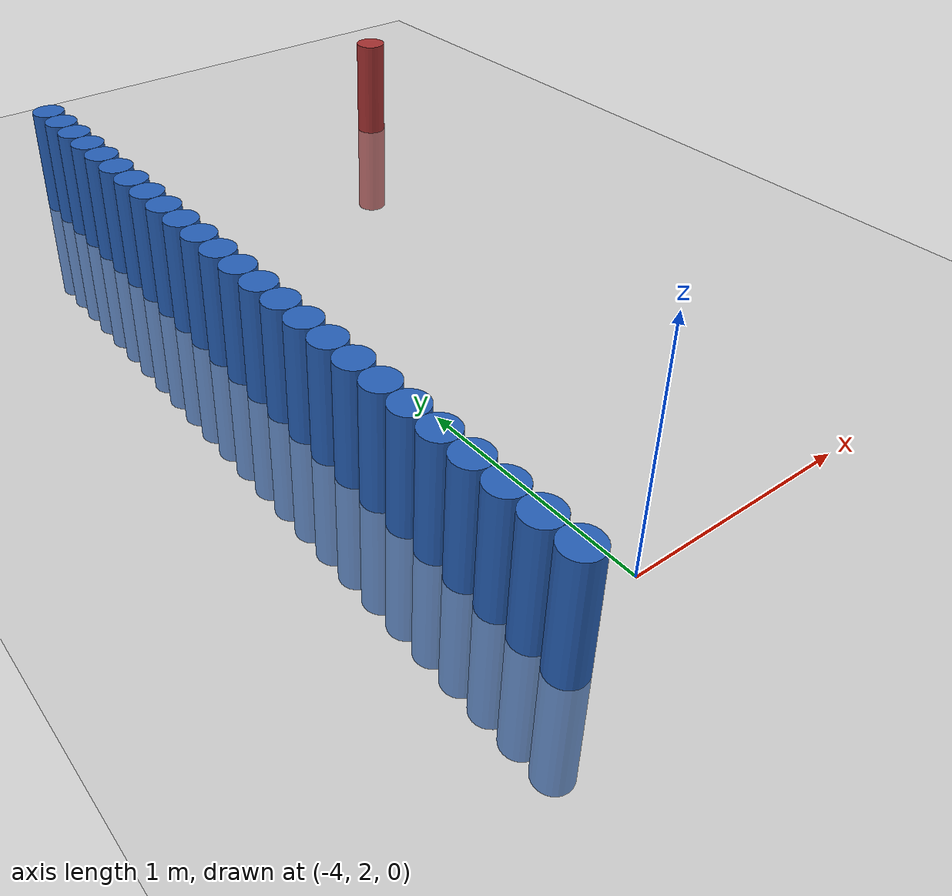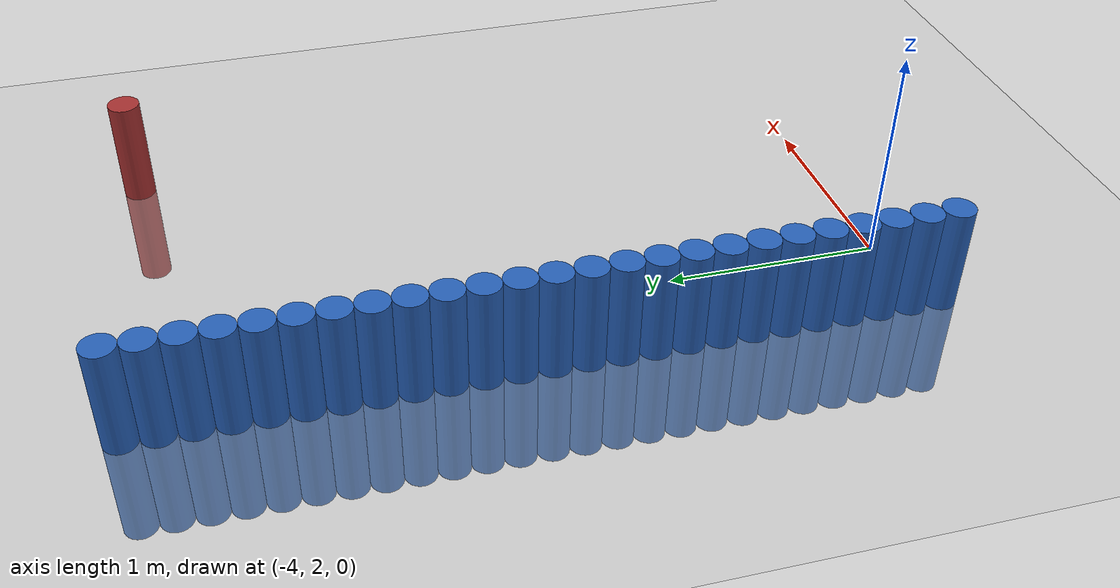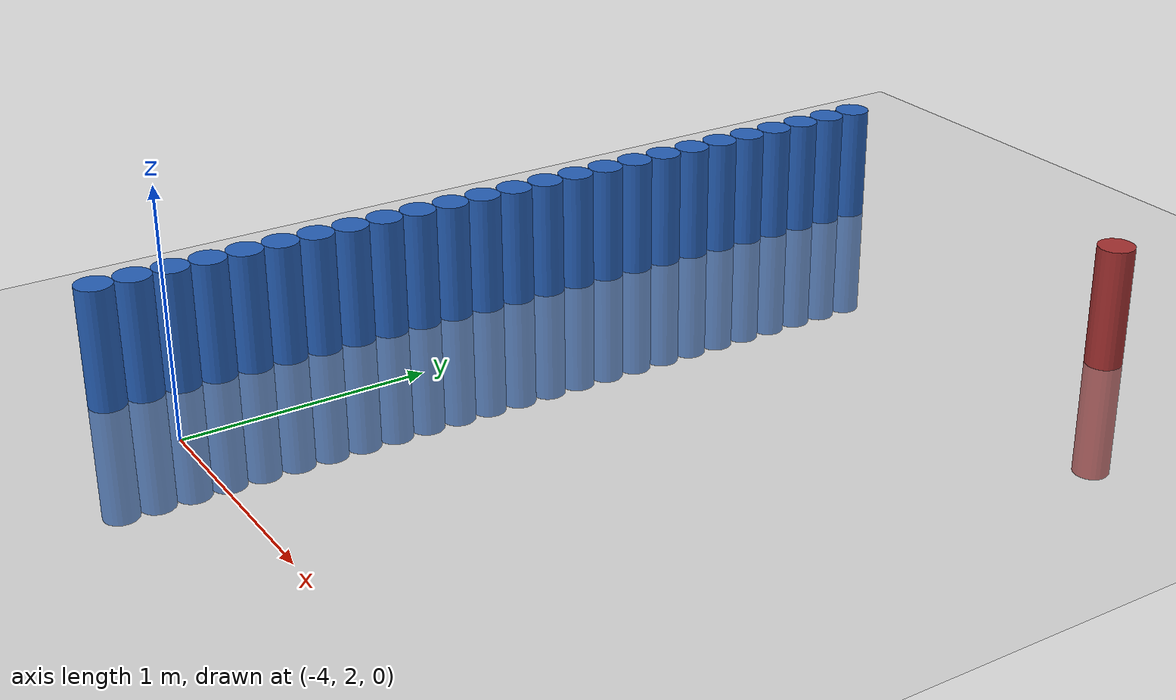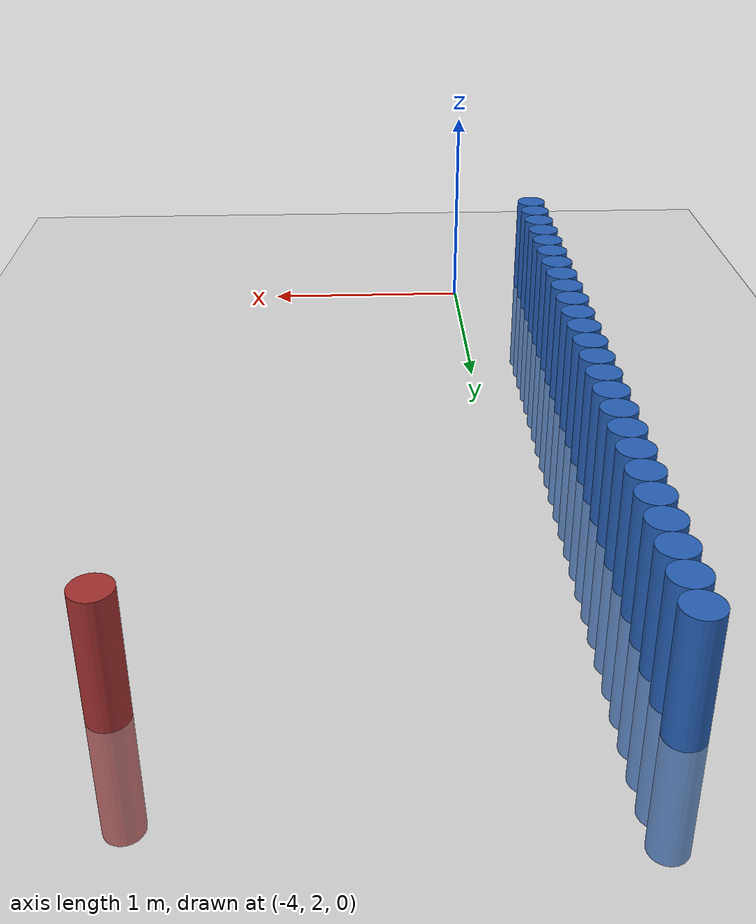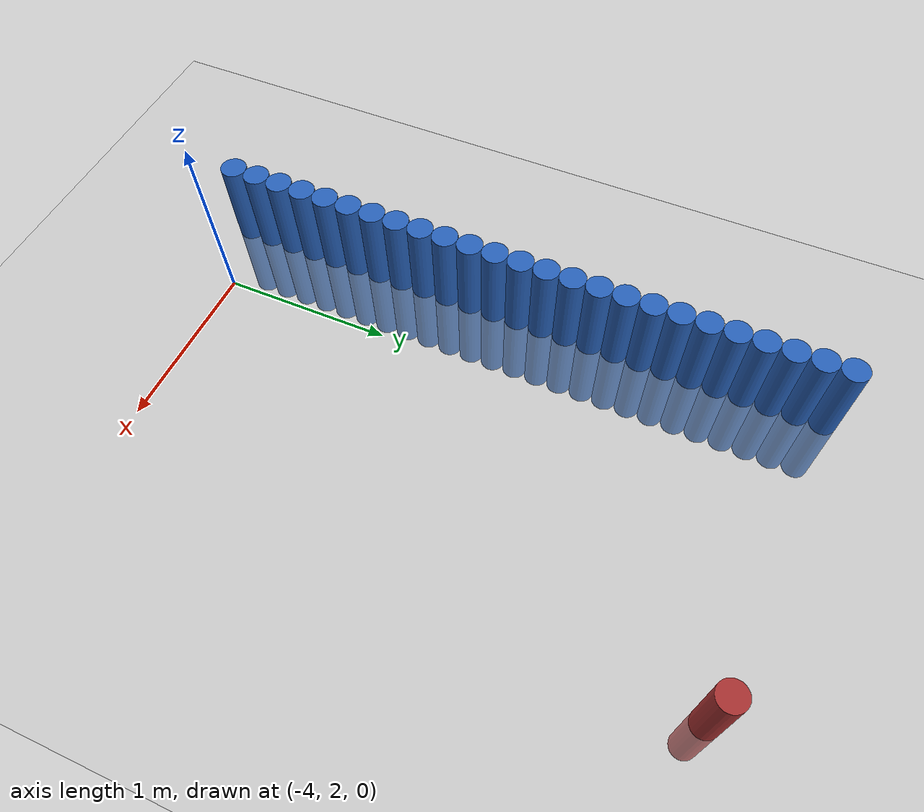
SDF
<sdf version="1.6">
 <world name="world_43">
  <model name="ground_plane">
   <static>1</static>
   <link name="link">
    <collision name="collision">
     <geometry><plane><normal>0 0 1</normal><size>100 100</size></plane></geometry>
     <surface><friction><ode><mu>100</mu><mu2>50</mu2></ode></friction></surface>
    </collision>
    <visual name="visual">
     <cast_shadows>0</cast_shadows>
     <geometry><plane><normal>0 0 1</normal><size>100 100</size></plane></geometry>
     <material>
      <script><uri>file://media/materials/scripts/gazebo.material</uri><name>Gazebo/Grey</name></script>
     </material>
    </visual>
   </link>
  </model>
  <model name="unit_cylinder_53">
   <static>1</static>
   <pose>-4.425000 1.875000 0.000000 0.000000 0.000000 0.000000</pose>
   <link name="link">
    <inertial>
     <mass>1</mass>
     <inertia><ixx>0.145833</ixx><ixy>0</ixy><ixz>0</ixz><iyy>0.145833</iyy><iyz>0</iyz><izz>0.125</izz></inertia>
    </inertial>
    <collision name="collision">
     <geometry><cylinder><radius>0.075000</radius><length>1</length></cylinder></geometry>
    </collision>
    <visual name="visual">
     <geometry><cylinder><radius>0.075000</radius><length>1</length></cylinder></geometry>
     <material>
      <ambient>0.152000 0.379000 0.720000 1</ambient>
      <diffuse>0.152000 0.379000 0.720000 1</diffuse>
     </material>
     <material>
      <script><name>Gazebo/Grey</name><uri>file://media/materials/scripts/gazebo.material</uri></script>
     </material>
    </visual>
   </link>
  </model>
  <model name="unit_cylinder_55">
   <static>1</static>
   <pose>-4.425000 2.025000 0.000000 0.000000 0.000000 0.000000</pose>
   <link name="link">
    <inertial>
     <mass>1</mass>
     <inertia><ixx>0.145833</ixx><ixy>0</ixy><ixz>0</ixz><iyy>0.145833</iyy><iyz>0</iyz><izz>0.125</izz></inertia>
    </inertial>
    <collision name="collision">
     <geometry><cylinder><radius>0.075000</radius><length>1</length></cylinder></geometry>
    </collision>
    <visual name="visual">
     <geometry><cylinder><radius>0.075000</radius><length>1</length></cylinder></geometry>
     <material>
      <ambient>0.152000 0.379000 0.720000 1</ambient>
      <diffuse>0.152000 0.379000 0.720000 1</diffuse>
     </material>
     <material>
      <script><name>Gazebo/Grey</name><uri>file://media/materials/scripts/gazebo.material</uri></script>
     </material>
    </visual>
   </link>
  </model>
  <model name="unit_cylinder_57">
   <static>1</static>
   <pose>-4.425000 2.175000 0.000000 0.000000 0.000000 0.000000</pose>
   <link name="link">
    <inertial>
     <mass>1</mass>
     <inertia><ixx>0.145833</ixx><ixy>0</ixy><ixz>0</ixz><iyy>0.145833</iyy><iyz>0</iyz><izz>0.125</izz></inertia>
    </inertial>
    <collision name="collision">
     <geometry><cylinder><radius>0.075000</radius><length>1</length></cylinder></geometry>
    </collision>
    <visual name="visual">
     <geometry><cylinder><radius>0.075000</radius><length>1</length></cylinder></geometry>
     <material>
      <ambient>0.152000 0.379000 0.720000 1</ambient>
      <diffuse>0.152000 0.379000 0.720000 1</diffuse>
     </material>
     <material>
      <script><name>Gazebo/Grey</name><uri>file://media/materials/scripts/gazebo.material</uri></script>
     </material>
    </visual>
   </link>
  </model>
  <model name="unit_cylinder_59">
   <static>1</static>
   <pose>-4.425000 2.325000 0.000000 0.000000 0.000000 0.000000</pose>
   <link name="link">
    <inertial>
     <mass>1</mass>
     <inertia><ixx>0.145833</ixx><ixy>0</ixy><ixz>0</ixz><iyy>0.145833</iyy><iyz>0</iyz><izz>0.125</izz></inertia>
    </inertial>
    <collision name="collision">
     <geometry><cylinder><radius>0.075000</radius><length>1</length></cylinder></geometry>
    </collision>
    <visual name="visual">
     <geometry><cylinder><radius>0.075000</radius><length>1</length></cylinder></geometry>
     <material>
      <ambient>0.152000 0.379000 0.720000 1</ambient>
      <diffuse>0.152000 0.379000 0.720000 1</diffuse>
     </material>
     <material>
      <script><name>Gazebo/Grey</name><uri>file://media/materials/scripts/gazebo.material</uri></script>
     </material>
    </visual>
   </link>
  </model>
  <model name="unit_cylinder_61">
   <static>1</static>
   <pose>-4.425000 2.475000 0.000000 0.000000 0.000000 0.000000</pose>
   <link name="link">
    <inertial>
     <mass>1</mass>
     <inertia><ixx>0.145833</ixx><ixy>0</ixy><ixz>0</ixz><iyy>0.145833</iyy><iyz>0</iyz><izz>0.125</izz></inertia>
    </inertial>
    <collision name="collision">
     <geometry><cylinder><radius>0.075000</radius><length>1</length></cylinder></geometry>
    </collision>
    <visual name="visual">
     <geometry><cylinder><radius>0.075000</radius><length>1</length></cylinder></geometry>
     <material>
      <ambient>0.152000 0.379000 0.720000 1</ambient>
      <diffuse>0.152000 0.379000 0.720000 1</diffuse>
     </material>
     <material>
      <script><name>Gazebo/Grey</name><uri>file://media/materials/scripts/gazebo.material</uri></script>
     </material>
    </visual>
   </link>
  </model>
  <model name="unit_cylinder_63">
   <static>1</static>
   <pose>-4.425000 2.625000 0.000000 0.000000 0.000000 0.000000</pose>
   <link name="link">
    <inertial>
     <mass>1</mass>
     <inertia><ixx>0.145833</ixx><ixy>0</ixy><ixz>0</ixz><iyy>0.145833</iyy><iyz>0</iyz><izz>0.125</izz></inertia>
    </inertial>
    <collision name="collision">
     <geometry><cylinder><radius>0.075000</radius><length>1</length></cylinder></geometry>
    </collision>
    <visual name="visual">
     <geometry><cylinder><radius>0.075000</radius><length>1</length></cylinder></geometry>
     <material>
      <ambient>0.152000 0.379000 0.720000 1</ambient>
      <diffuse>0.152000 0.379000 0.720000 1</diffuse>
     </material>
     <material>
      <script><name>Gazebo/Grey</name><uri>file://media/materials/scripts/gazebo.material</uri></script>
     </material>
    </visual>
   </link>
  </model>
  <model name="unit_cylinder_65">
   <static>1</static>
   <pose>-4.425000 2.775000 0.000000 0.000000 0.000000 0.000000</pose>
   <link name="link">
    <inertial>
     <mass>1</mass>
     <inertia><ixx>0.145833</ixx><ixy>0</ixy><ixz>0</ixz><iyy>0.145833</iyy><iyz>0</iyz><izz>0.125</izz></inertia>
    </inertial>
    <collision name="collision">
     <geometry><cylinder><radius>0.075000</radius><length>1</length></cylinder></geometry>
    </collision>
    <visual name="visual">
     <geometry><cylinder><radius>0.075000</radius><length>1</length></cylinder></geometry>
     <material>
      <ambient>0.152000 0.379000 0.720000 1</ambient>
      <diffuse>0.152000 0.379000 0.720000 1</diffuse>
     </material>
     <material>
      <script><name>Gazebo/Grey</name><uri>file://media/materials/scripts/gazebo.material</uri></script>
     </material>
    </visual>
   </link>
  </model>
  <model name="unit_cylinder_67">
   <static>1</static>
   <pose>-4.425000 2.925000 0.000000 0.000000 0.000000 0.000000</pose>
   <link name="link">
    <inertial>
     <mass>1</mass>
     <inertia><ixx>0.145833</ixx><ixy>0</ixy><ixz>0</ixz><iyy>0.145833</iyy><iyz>0</iyz><izz>0.125</izz></inertia>
    </inertial>
    <collision name="collision">
     <geometry><cylinder><radius>0.075000</radius><length>1</length></cylinder></geometry>
    </collision>
    <visual name="visual">
     <geometry><cylinder><radius>0.075000</radius><length>1</length></cylinder></geometry>
     <material>
      <ambient>0.152000 0.379000 0.720000 1</ambient>
      <diffuse>0.152000 0.379000 0.720000 1</diffuse>
     </material>
     <material>
      <script><name>Gazebo/Grey</name><uri>file://media/materials/scripts/gazebo.material</uri></script>
     </material>
    </visual>
   </link>
  </model>
  <model name="unit_cylinder_69">
   <static>1</static>
   <pose>-4.425000 3.075000 0.000000 0.000000 0.000000 0.000000</pose>
   <link name="link">
    <inertial>
     <mass>1</mass>
     <inertia><ixx>0.145833</ixx><ixy>0</ixy><ixz>0</ixz><iyy>0.145833</iyy><iyz>0</iyz><izz>0.125</izz></inertia>
    </inertial>
    <collision name="collision">
     <geometry><cylinder><radius>0.075000</radius><length>1</length></cylinder></geometry>
    </collision>
    <visual name="visual">
     <geometry><cylinder><radius>0.075000</radius><length>1</length></cylinder></geometry>
     <material>
      <ambient>0.152000 0.379000 0.720000 1</ambient>
      <diffuse>0.152000 0.379000 0.720000 1</diffuse>
     </material>
     <material>
      <script><name>Gazebo/Grey</name><uri>file://media/materials/scripts/gazebo.material</uri></script>
     </material>
    </visual>
   </link>
  </model>
  <model name="unit_cylinder_71">
   <static>1</static>
   <pose>-4.425000 3.225000 0.000000 0.000000 0.000000 0.000000</pose>
   <link name="link">
    <inertial>
     <mass>1</mass>
     <inertia><ixx>0.145833</ixx><ixy>0</ixy><ixz>0</ixz><iyy>0.145833</iyy><iyz>0</iyz><izz>0.125</izz></inertia>
    </inertial>
    <collision name="collision">
     <geometry><cylinder><radius>0.075000</radius><length>1</length></cylinder></geometry>
    </collision>
    <visual name="visual">
     <geometry><cylinder><radius>0.075000</radius><length>1</length></cylinder></geometry>
     <material>
      <ambient>0.152000 0.379000 0.720000 1</ambient>
      <diffuse>0.152000 0.379000 0.720000 1</diffuse>
     </material>
     <material>
      <script><name>Gazebo/Grey</name><uri>file://media/materials/scripts/gazebo.material</uri></script>
     </material>
    </visual>
   </link>
  </model>
  <model name="unit_cylinder_73">
   <static>1</static>
   <pose>-4.425000 3.375000 0.000000 0.000000 0.000000 0.000000</pose>
   <link name="link">
    <inertial>
     <mass>1</mass>
     <inertia><ixx>0.145833</ixx><ixy>0</ixy><ixz>0</ixz><iyy>0.145833</iyy><iyz>0</iyz><izz>0.125</izz></inertia>
    </inertial>
    <collision name="collision">
     <geometry><cylinder><radius>0.075000</radius><length>1</length></cylinder></geometry>
    </collision>
    <visual name="visual">
     <geometry><cylinder><radius>0.075000</radius><length>1</length></cylinder></geometry>
     <material>
      <ambient>0.152000 0.379000 0.720000 1</ambient>
      <diffuse>0.152000 0.379000 0.720000 1</diffuse>
     </material>
     <material>
      <script><name>Gazebo/Grey</name><uri>file://media/materials/scripts/gazebo.material</uri></script>
     </material>
    </visual>
   </link>
  </model>
  <model name="unit_cylinder_75">
   <static>1</static>
   <pose>-4.425000 3.525000 0.000000 0.000000 0.000000 0.000000</pose>
   <link name="link">
    <inertial>
     <mass>1</mass>
     <inertia><ixx>0.145833</ixx><ixy>0</ixy><ixz>0</ixz><iyy>0.145833</iyy><iyz>0</iyz><izz>0.125</izz></inertia>
    </inertial>
    <collision name="collision">
     <geometry><cylinder><radius>0.075000</radius><length>1</length></cylinder></geometry>
    </collision>
    <visual name="visual">
     <geometry><cylinder><radius>0.075000</radius><length>1</length></cylinder></geometry>
     <material>
      <ambient>0.152000 0.379000 0.720000 1</ambient>
      <diffuse>0.152000 0.379000 0.720000 1</diffuse>
     </material>
     <material>
      <script><name>Gazebo/Grey</name><uri>file://media/materials/scripts/gazebo.material</uri></script>
     </material>
    </visual>
   </link>
  </model>
  <model name="unit_cylinder_77">
   <static>1</static>
   <pose>-4.425000 3.675000 0.000000 0.000000 0.000000 0.000000</pose>
   <link name="link">
    <inertial>
     <mass>1</mass>
     <inertia><ixx>0.145833</ixx><ixy>0</ixy><ixz>0</ixz><iyy>0.145833</iyy><iyz>0</iyz><izz>0.125</izz></inertia>
    </inertial>
    <collision name="collision">
     <geometry><cylinder><radius>0.075000</radius><length>1</length></cylinder></geometry>
    </collision>
    <visual name="visual">
     <geometry><cylinder><radius>0.075000</radius><length>1</length></cylinder></geometry>
     <material>
      <ambient>0.152000 0.379000 0.720000 1</ambient>
      <diffuse>0.152000 0.379000 0.720000 1</diffuse>
     </material>
     <material>
      <script><name>Gazebo/Grey</name><uri>file://media/materials/scripts/gazebo.material</uri></script>
     </material>
    </visual>
   </link>
  </model>
  <model name="unit_cylinder_79">
   <static>1</static>
   <pose>-4.425000 3.825000 0.000000 0.000000 0.000000 0.000000</pose>
   <link name="link">
    <inertial>
     <mass>1</mass>
     <inertia><ixx>0.145833</ixx><ixy>0</ixy><ixz>0</ixz><iyy>0.145833</iyy><iyz>0</iyz><izz>0.125</izz></inertia>
    </inertial>
    <collision name="collision">
     <geometry><cylinder><radius>0.075000</radius><length>1</length></cylinder></geometry>
    </collision>
    <visual name="visual">
     <geometry><cylinder><radius>0.075000</radius><length>1</length></cylinder></geometry>
     <material>
      <ambient>0.152000 0.379000 0.720000 1</ambient>
      <diffuse>0.152000 0.379000 0.720000 1</diffuse>
     </material>
     <material>
      <script><name>Gazebo/Grey</name><uri>file://media/materials/scripts/gazebo.material</uri></script>
     </material>
    </visual>
   </link>
  </model>
  <model name="unit_cylinder_81">
   <static>1</static>
   <pose>-4.425000 3.975000 0.000000 0.000000 0.000000 0.000000</pose>
   <link name="link">
    <inertial>
     <mass>1</mass>
     <inertia><ixx>0.145833</ixx><ixy>0</ixy><ixz>0</ixz><iyy>0.145833</iyy><iyz>0</iyz><izz>0.125</izz></inertia>
    </inertial>
    <collision name="collision">
     <geometry><cylinder><radius>0.075000</radius><length>1</length></cylinder></geometry>
    </collision>
    <visual name="visual">
     <geometry><cylinder><radius>0.075000</radius><length>1</length></cylinder></geometry>
     <material>
      <ambient>0.152000 0.379000 0.720000 1</ambient>
      <diffuse>0.152000 0.379000 0.720000 1</diffuse>
     </material>
     <material>
      <script><name>Gazebo/Grey</name><uri>file://media/materials/scripts/gazebo.material</uri></script>
     </material>
    </visual>
   </link>
  </model>
  <model name="unit_cylinder_83">
   <static>1</static>
   <pose>-4.425000 4.125000 0.000000 0.000000 0.000000 0.000000</pose>
   <link name="link">
    <inertial>
     <mass>1</mass>
     <inertia><ixx>0.145833</ixx><ixy>0</ixy><ixz>0</ixz><iyy>0.145833</iyy><iyz>0</iyz><izz>0.125</izz></inertia>
    </inertial>
    <collision name="collision">
     <geometry><cylinder><radius>0.075000</radius><length>1</length></cylinder></geometry>
    </collision>
    <visual name="visual">
     <geometry><cylinder><radius>0.075000</radius><length>1</length></cylinder></geometry>
     <material>
      <ambient>0.152000 0.379000 0.720000 1</ambient>
      <diffuse>0.152000 0.379000 0.720000 1</diffuse>
     </material>
     <material>
      <script><name>Gazebo/Grey</name><uri>file://media/materials/scripts/gazebo.material</uri></script>
     </material>
    </visual>
   </link>
  </model>
  <model name="unit_cylinder_85">
   <static>1</static>
   <pose>-4.425000 4.275000 0.000000 0.000000 0.000000 0.000000</pose>
   <link name="link">
    <inertial>
     <mass>1</mass>
     <inertia><ixx>0.145833</ixx><ixy>0</ixy><ixz>0</ixz><iyy>0.145833</iyy><iyz>0</iyz><izz>0.125</izz></inertia>
    </inertial>
    <collision name="collision">
     <geometry><cylinder><radius>0.075000</radius><length>1</length></cylinder></geometry>
    </collision>
    <visual name="visual">
     <geometry><cylinder><radius>0.075000</radius><length>1</length></cylinder></geometry>
     <material>
      <ambient>0.152000 0.379000 0.720000 1</ambient>
      <diffuse>0.152000 0.379000 0.720000 1</diffuse>
     </material>
     <material>
      <script><name>Gazebo/Grey</name><uri>file://media/materials/scripts/gazebo.material</uri></script>
     </material>
    </visual>
   </link>
  </model>
  <model name="unit_cylinder_87">
   <static>1</static>
   <pose>-4.425000 4.425000 0.000000 0.000000 0.000000 0.000000</pose>
   <link name="link">
    <inertial>
     <mass>1</mass>
     <inertia><ixx>0.145833</ixx><ixy>0</ixy><ixz>0</ixz><iyy>0.145833</iyy><iyz>0</iyz><izz>0.125</izz></inertia>
    </inertial>
    <collision name="collision">
     <geometry><cylinder><radius>0.075000</radius><length>1</length></cylinder></geometry>
    </collision>
    <visual name="visual">
     <geometry><cylinder><radius>0.075000</radius><length>1</length></cylinder></geometry>
     <material>
      <ambient>0.152000 0.379000 0.720000 1</ambient>
      <diffuse>0.152000 0.379000 0.720000 1</diffuse>
     </material>
     <material>
      <script><name>Gazebo/Grey</name><uri>file://media/materials/scripts/gazebo.material</uri></script>
     </material>
    </visual>
   </link>
  </model>
  <model name="unit_cylinder_89">
   <static>1</static>
   <pose>-4.425000 4.575000 0.000000 0.000000 0.000000 0.000000</pose>
   <link name="link">
    <inertial>
     <mass>1</mass>
     <inertia><ixx>0.145833</ixx><ixy>0</ixy><ixz>0</ixz><iyy>0.145833</iyy><iyz>0</iyz><izz>0.125</izz></inertia>
    </inertial>
    <collision name="collision">
     <geometry><cylinder><radius>0.075000</radius><length>1</length></cylinder></geometry>
    </collision>
    <visual name="visual">
     <geometry><cylinder><radius>0.075000</radius><length>1</length></cylinder></geometry>
     <material>
      <ambient>0.152000 0.379000 0.720000 1</ambient>
      <diffuse>0.152000 0.379000 0.720000 1</diffuse>
     </material>
     <material>
      <script><name>Gazebo/Grey</name><uri>file://media/materials/scripts/gazebo.material</uri></script>
     </material>
    </visual>
   </link>
  </model>
  <model name="unit_cylinder_91">
   <static>1</static>
   <pose>-4.425000 4.725000 0.000000 0.000000 0.000000 0.000000</pose>
   <link name="link">
    <inertial>
     <mass>1</mass>
     <inertia><ixx>0.145833</ixx><ixy>0</ixy><ixz>0</ixz><iyy>0.145833</iyy><iyz>0</iyz><izz>0.125</izz></inertia>
    </inertial>
    <collision name="collision">
     <geometry><cylinder><radius>0.075000</radius><length>1</length></cylinder></geometry>
    </collision>
    <visual name="visual">
     <geometry><cylinder><radius>0.075000</radius><length>1</length></cylinder></geometry>
     <material>
      <ambient>0.152000 0.379000 0.720000 1</ambient>
      <diffuse>0.152000 0.379000 0.720000 1</diffuse>
     </material>
     <material>
      <script><name>Gazebo/Grey</name><uri>file://media/materials/scripts/gazebo.material</uri></script>
     </material>
    </visual>
   </link>
  </model>
  <model name="unit_cylinder_93">
   <static>1</static>
   <pose>-4.425000 4.875000 0.000000 0.000000 0.000000 0.000000</pose>
   <link name="link">
    <inertial>
     <mass>1</mass>
     <inertia><ixx>0.145833</ixx><ixy>0</ixy><ixz>0</ixz><iyy>0.145833</iyy><iyz>0</iyz><izz>0.125</izz></inertia>
    </inertial>
    <collision name="collision">
     <geometry><cylinder><radius>0.075000</radius><length>1</length></cylinder></geometry>
    </collision>
    <visual name="visual">
     <geometry><cylinder><radius>0.075000</radius><length>1</length></cylinder></geometry>
     <material>
      <ambient>0.152000 0.379000 0.720000 1</ambient>
      <diffuse>0.152000 0.379000 0.720000 1</diffuse>
     </material>
     <material>
      <script><name>Gazebo/Grey</name><uri>file://media/materials/scripts/gazebo.material</uri></script>
     </material>
    </visual>
   </link>
  </model>
  <model name="unit_cylinder_95">
   <static>1</static>
   <pose>-4.425000 5.025000 0.000000 0.000000 0.000000 0.000000</pose>
   <link name="link">
    <inertial>
     <mass>1</mass>
     <inertia><ixx>0.145833</ixx><ixy>0</ixy><ixz>0</ixz><iyy>0.145833</iyy><iyz>0</iyz><izz>0.125</izz></inertia>
    </inertial>
    <collision name="collision">
     <geometry><cylinder><radius>0.075000</radius><length>1</length></cylinder></geometry>
    </collision>
    <visual name="visual">
     <geometry><cylinder><radius>0.075000</radius><length>1</length></cylinder></geometry>
     <material>
      <ambient>0.152000 0.379000 0.720000 1</ambient>
      <diffuse>0.152000 0.379000 0.720000 1</diffuse>
     </material>
     <material>
      <script><name>Gazebo/Grey</name><uri>file://media/materials/scripts/gazebo.material</uri></script>
     </material>
    </visual>
   </link>
  </model>
  <model name="unit_cylinder_96">
   <static>1</static>
   <pose>-4.425000 5.175000 0.000000 0.000000 0.000000 0.000000</pose>
   <link name="link">
    <inertial>
     <mass>1</mass>
     <inertia><ixx>0.145833</ixx><ixy>0</ixy><ixz>0</ixz><iyy>0.145833</iyy><iyz>0</iyz><izz>0.125</izz></inertia>
    </inertial>
    <collision name="collision">
     <geometry><cylinder><radius>0.075000</radius><length>1</length></cylinder></geometry>
    </collision>
    <visual name="visual">
     <geometry><cylinder><radius>0.075000</radius><length>1</length></cylinder></geometry>
     <material>
      <ambient>0.152000 0.379000 0.720000 1</ambient>
      <diffuse>0.152000 0.379000 0.720000 1</diffuse>
     </material>
     <material>
      <script><name>Gazebo/Grey</name><uri>file://media/materials/scripts/gazebo.material</uri></script>
     </material>
    </visual>
   </link>
  </model>
  <model name="unit_cylinder_97">
   <static>1</static>
   <pose>-4.425000 5.325000 0.000000 0.000000 0.000000 0.000000</pose>
   <link name="link">
    <inertial>
     <mass>1</mass>
     <inertia><ixx>0.145833</ixx><ixy>0</ixy><ixz>0</ixz><iyy>0.145833</iyy><iyz>0</iyz><izz>0.125</izz></inertia>
    </inertial>
    <collision name="collision">
     <geometry><cylinder><radius>0.075000</radius><length>1</length></cylinder></geometry>
    </collision>
    <visual name="visual">
     <geometry><cylinder><radius>0.075000</radius><length>1</length></cylinder></geometry>
     <material>
      <ambient>0.152000 0.379000 0.720000 1</ambient>
      <diffuse>0.152000 0.379000 0.720000 1</diffuse>
     </material>
     <material>
      <script><name>Gazebo/Grey</name><uri>file://media/materials/scripts/gazebo.material</uri></script>
     </material>
    </visual>
   </link>
  </model>
  <model name="unit_cylinder_98">
   <static>1</static>
   <pose>-4.425000 5.475000 0.000000 0.000000 0.000000 0.000000</pose>
   <link name="link">
    <inertial>
     <mass>1</mass>
     <inertia><ixx>0.145833</ixx><ixy>0</ixy><ixz>0</ixz><iyy>0.145833</iyy><iyz>0</iyz><izz>0.125</izz></inertia>
    </inertial>
    <collision name="collision">
     <geometry><cylinder><radius>0.075000</radius><length>1</length></cylinder></geometry>
    </collision>
    <visual name="visual">
     <geometry><cylinder><radius>0.075000</radius><length>1</length></cylinder></geometry>
     <material>
      <ambient>0.152000 0.379000 0.720000 1</ambient>
      <diffuse>0.152000 0.379000 0.720000 1</diffuse>
     </material>
     <material>
      <script><name>Gazebo/Grey</name><uri>file://media/materials/scripts/gazebo.material</uri></script>
     </material>
    </visual>
   </link>
  </model>
  <model name="unit_cylinder_136">
   <static>1</static>
   <pose>-2.625000 5.325000 0.000000 0.000000 0.000000 0.000000</pose>
   <link name="link">
    <inertial>
     <mass>1</mass>
     <inertia><ixx>0.145833</ixx><ixy>0</ixy><ixz>0</ixz><iyy>0.145833</iyy><iyz>0</iyz><izz>0.125</izz></inertia>
    </inertial>
    <collision name="collision">
     <geometry><cylinder><radius>0.075000</radius><length>1</length></cylinder></geometry>
    </collision>
    <visual name="visual">
     <geometry><cylinder><radius>0.075000</radius><length>1</length></cylinder></geometry>
     <material>
      <ambient>0.648000 0.192000 0.192000 1</ambient>
      <diffuse>0.648000 0.192000 0.192000 1</diffuse>
     </material>
     <material>
      <script><name>Gazebo/Grey</name><uri>file://media/materials/scripts/gazebo.material</uri></script>
     </material>
    </visual>
   </link>
  </model>
 </world>
</sdf>
